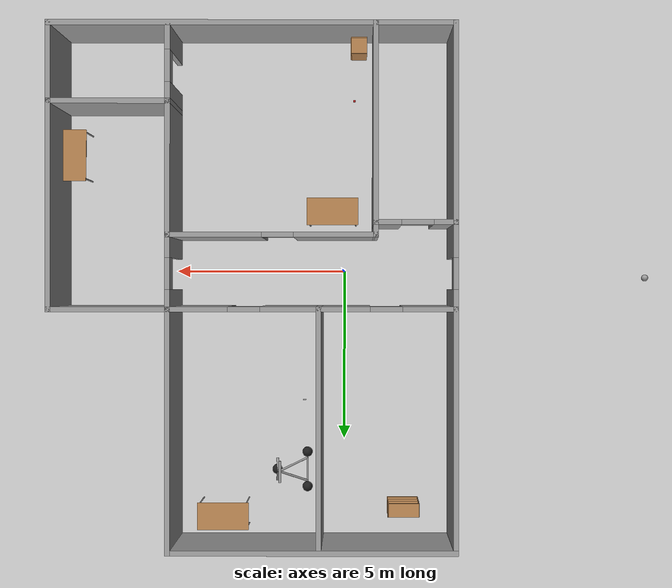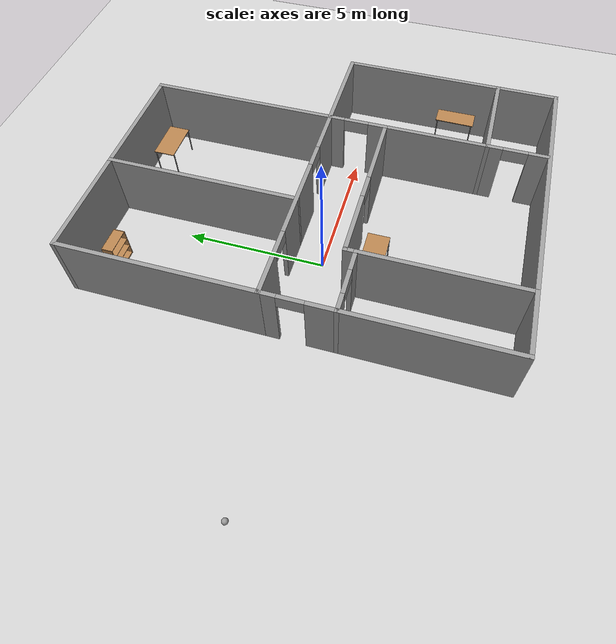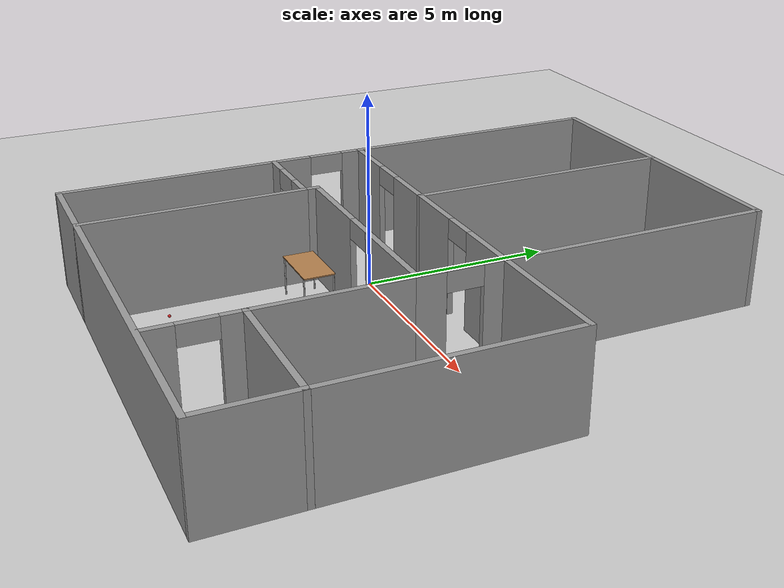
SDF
<sdf version="1.6">
 <world name="default">
  <plugin name="welcome_message" filename="libwelcome_message.so"/>
  <light name="sun" type="directional">
   <pose>0 0 10 0 -0 0</pose>
   <diffuse>0.8 0.8 0.8 1</diffuse>
   <specular>0.2 0.2 0.2 1</specular>
   <attenuation>
    <range>1000</range>
    <constant>0.9</constant>
    <linear>0.01</linear>
    <quadratic>0.001</quadratic>
   </attenuation>
   <direction>-0.5 0.1 -0.9</direction>
   <spot><inner_angle>0</inner_angle><outer_angle>0</outer_angle><falloff>0</falloff></spot>
  </light>
  <model name="ground_plane">
   <static>1</static>
   <link name="link">
    <collision name="collision">
     <geometry><plane><normal>0 0 1</normal><size>100 100</size></plane></geometry>
     <surface>
      <contact><collide_bitmask>65535</collide_bitmask></contact>
      <friction><ode><mu>100</mu><mu2>50</mu2></ode></friction>
     </surface>
    </collision>
    <visual name="visual">
     <cast_shadows>0</cast_shadows>
     <geometry><plane><normal>0 0 1</normal><size>100 100</size></plane></geometry>
     <material>
      <script><uri>file://media/materials/scripts/gazebo.material</uri><name>Gazebo/Grey</name></script>
     </material>
    </visual>
   </link>
  </model>
  <gravity>0 0 -9.8</gravity>
  <magnetic_field>6e-06 2.3e-05 -4.2e-05</magnetic_field>
  <atmosphere type="adiabatic"/>
  <physics name="default_physics" default="0" type="ode">
   <max_step_size>0.001</max_step_size>
   <real_time_factor>1</real_time_factor>
   <real_time_update_rate>1000</real_time_update_rate>
  </physics>
  <scene><ambient>0.4 0.4 0.4 1</ambient><background>0.7 0.7 0.7 1</background><shadows>1</shadows></scene>
  <spherical_coordinates>
   <surface_model>EARTH_WGS84</surface_model>
   <latitude_deg>0</latitude_deg>
   <longitude_deg>0</longitude_deg>
   <elevation>0</elevation>
   <heading_deg>0</heading_deg>
  </spherical_coordinates>
  <model name="model">
   <pose>2.57259 0.488978 0 0 -0 0</pose>
   <link name="Wall_14">
    <pose>-1.675 0.600142 0 0 -0 3.14159</pose>
    <visual name="Wall_14_Visual_0">
     <pose>-3.24372 0 1.25 0 -0 0</pose>
     <geometry><box><size>1.76255 0.15 2.5</size></box></geometry>
     <material>
      <script><uri>file://media/materials/scripts/gazebo.material</uri><name>Gazebo/Grey</name></script>
      <ambient>1 1 1 1</ambient>
     </material>
     <meta><layer>0</layer></meta>
    </visual>
    <collision name="Wall_14_Collision_0">
     <geometry><box><size>1.76255 0.15 2.5</size></box></geometry>
     <pose>-3.24372 0 1.25 0 -0 0</pose>
    </collision>
    <visual name="Wall_14_Visual_1">
     <pose>0.092741 0 1.25 0 -0 0</pose>
     <geometry><box><size>3.11038 0.15 2.5</size></box></geometry>
     <material>
      <script><uri>file://media/materials/scripts/gazebo.material</uri><name>Gazebo/Grey</name></script>
      <ambient>1 1 1 1</ambient>
     </material>
     <meta><layer>0</layer></meta>
    </visual>
    <collision name="Wall_14_Collision_1">
     <geometry><box><size>3.11038 0.15 2.5</size></box></geometry>
     <pose>0.092741 0 1.25 0 -0 0</pose>
    </collision>
    <visual name="Wall_14_Visual_2">
     <pose>3.33647 0 1.25 0 -0 0</pose>
     <geometry><box><size>1.57707 0.15 2.5</size></box></geometry>
     <material>
      <script><uri>file://media/materials/scripts/gazebo.material</uri><name>Gazebo/Grey</name></script>
      <ambient>1 1 1 1</ambient>
     </material>
     <meta><layer>0</layer></meta>
    </visual>
    <collision name="Wall_14_Collision_2">
     <geometry><box><size>1.57707 0.15 2.5</size></box></geometry>
     <pose>3.33647 0 1.25 0 -0 0</pose>
    </collision>
    <visual name="Wall_14_Visual_3">
     <pose>-1.91245 0 2.25 0 -0 0</pose>
     <geometry><box><size>0.9 0.15 0.5</size></box></geometry>
     <material>
      <script><uri>file://media/materials/scripts/gazebo.material</uri><name>Gazebo/Grey</name></script>
      <ambient>1 1 1 1</ambient>
     </material>
     <meta><layer>0</layer></meta>
    </visual>
    <collision name="Wall_14_Collision_3">
     <geometry><box><size>0.9 0.15 0.5</size></box></geometry>
     <pose>-1.91245 0 2.25 0 -0 0</pose>
    </collision>
    <visual name="Wall_14_Visual_4">
     <pose>2.09793 0 2.25 0 -0 0</pose>
     <geometry><box><size>0.9 0.15 0.5</size></box></geometry>
     <material>
      <script><uri>file://media/materials/scripts/gazebo.material</uri><name>Gazebo/Grey</name></script>
      <ambient>1 1 1 1</ambient>
     </material>
     <meta><layer>0</layer></meta>
    </visual>
    <collision name="Wall_14_Collision_4">
     <geometry><box><size>0.9 0.15 0.5</size></box></geometry>
     <pose>2.09793 0 2.25 0 -0 0</pose>
    </collision>
   </link>
   <link name="Wall_18">
    <pose>-4.6 -1.84986 0 0 -0 3.14159</pose>
    <visual name="Wall_18_Visual_0">
     <pose>-0.7988 0 1.25 0 -0 0</pose>
     <geometry><box><size>0.8024 0.15 2.5</size></box></geometry>
     <material>
      <script><uri>file://media/materials/scripts/gazebo.material</uri><name>Gazebo/Grey</name></script>
      <ambient>1 1 1 1</ambient>
     </material>
     <meta><layer>0</layer></meta>
    </visual>
    <collision name="Wall_18_Collision_0">
     <geometry><box><size>0.8024 0.15 2.5</size></box></geometry>
     <pose>-0.7988 0 1.25 0 -0 0</pose>
    </collision>
    <visual name="Wall_18_Visual_1">
     <pose>0.8512 0 1.25 0 -0 0</pose>
     <geometry><box><size>0.6976 0.15 2.5</size></box></geometry>
     <material>
      <script><uri>file://media/materials/scripts/gazebo.material</uri><name>Gazebo/Grey</name></script>
      <ambient>1 1 1 1</ambient>
     </material>
     <meta><layer>0</layer></meta>
    </visual>
    <collision name="Wall_18_Collision_1">
     <geometry><box><size>0.6976 0.15 2.5</size></box></geometry>
     <pose>0.8512 0 1.25 0 -0 0</pose>
    </collision>
    <visual name="Wall_18_Visual_2">
     <pose>0.0524 0 2.25 0 -0 0</pose>
     <geometry><box><size>0.9 0.15 0.5</size></box></geometry>
     <material>
      <script><uri>file://media/materials/scripts/gazebo.material</uri><name>Gazebo/Grey</name></script>
      <ambient>1 1 1 1</ambient>
     </material>
     <meta><layer>0</layer></meta>
    </visual>
    <collision name="Wall_18_Collision_2">
     <geometry><box><size>0.9 0.15 0.5</size></box></geometry>
     <pose>0.0524 0 2.25 0 -0 0</pose>
    </collision>
   </link>
   <link name="Wall_19">
    <pose>-5.725 -0.624858 0 0 -0 1.5708</pose>
    <visual name="Wall_19_Visual_0">
     <pose>-0.763447 0 1.25 0 -0 0</pose>
     <geometry><box><size>1.07361 0.15 2.5</size></box></geometry>
     <material>
      <script><uri>file://media/materials/scripts/gazebo.material</uri><name>Gazebo/Grey</name></script>
      <ambient>1 1 1 1</ambient>
     </material>
     <meta><layer>0</layer></meta>
    </visual>
    <collision name="Wall_19_Collision_0">
     <geometry><box><size>1.07361 0.15 2.5</size></box></geometry>
     <pose>-0.763447 0 1.25 0 -0 0</pose>
    </collision>
    <visual name="Wall_19_Visual_1">
     <pose>0.986808 0 1.25 0 -0 0</pose>
     <geometry><box><size>0.626895 0.15 2.5</size></box></geometry>
     <material>
      <script><uri>file://media/materials/scripts/gazebo.material</uri><name>Gazebo/Grey</name></script>
      <ambient>1 1 1 1</ambient>
     </material>
     <meta><layer>0</layer></meta>
    </visual>
    <collision name="Wall_19_Collision_1">
     <geometry><box><size>0.626895 0.15 2.5</size></box></geometry>
     <pose>0.986808 0 1.25 0 -0 0</pose>
    </collision>
    <visual name="Wall_19_Visual_2">
     <pose>0.22336 0 2.25 0 -0 0</pose>
     <geometry><box><size>0.9 0.15 0.5</size></box></geometry>
     <material>
      <script><uri>file://media/materials/scripts/gazebo.material</uri><name>Gazebo/Grey</name></script>
      <ambient>1 1 1 1</ambient>
     </material>
     <meta><layer>0</layer></meta>
    </visual>
    <collision name="Wall_19_Collision_2">
     <geometry><box><size>0.9 0.15 0.5</size></box></geometry>
     <pose>0.22336 0 2.25 0 -0 0</pose>
    </collision>
   </link>
   <link name="Wall_21">
    <collision name="Wall_21_Collision">
     <geometry><box><size>7 0.15 2.5</size></box></geometry>
     <pose>0 0 1.25 0 -0 0</pose>
    </collision>
    <visual name="Wall_21_Visual">
     <pose>0 0 1.25 0 -0 0</pose>
     <geometry><box><size>7 0.15 2.5</size></box></geometry>
     <material>
      <script><uri>file://media/materials/scripts/gazebo.material</uri><name>Gazebo/Grey</name></script>
      <ambient>1 1 1 1</ambient>
     </material>
     <meta><layer>0</layer></meta>
    </visual>
    <pose>2.375 4.02514 0 0 -0 1.5708</pose>
   </link>
   <link name="Wall_23">
    <collision name="Wall_23_Collision">
     <geometry><box><size>8.25 0.15 2.5</size></box></geometry>
     <pose>0 0 1.25 0 -0 0</pose>
    </collision>
    <visual name="Wall_23_Visual">
     <pose>0 0 1.25 0 -0 0</pose>
     <geometry><box><size>8.25 0.15 2.5</size></box></geometry>
     <material>
      <script><uri>file://media/materials/scripts/gazebo.material</uri><name>Gazebo/Grey</name></script>
      <ambient>1 1 1 1</ambient>
     </material>
     <meta><layer>0</layer></meta>
    </visual>
    <pose>-1.675 7.45014 0 0 -0 3.14159</pose>
   </link>
   <link name="Wall_24">
    <collision name="Wall_24_Collision">
     <geometry><box><size>7 0.15 2.5</size></box></geometry>
     <pose>0 0 1.25 0 -0 0</pose>
    </collision>
    <visual name="Wall_24_Visual">
     <pose>0 0 1.25 0 -0 0</pose>
     <geometry><box><size>7 0.15 2.5</size></box></geometry>
     <material>
      <script><uri>file://media/materials/scripts/gazebo.material</uri><name>Gazebo/Grey</name></script>
      <ambient>1 1 1 1</ambient>
     </material>
     <meta><layer>0</layer></meta>
    </visual>
    <pose>-5.725 4.02514 0 0 -0 -1.5708</pose>
   </link>
   <link name="Wall_28">
    <collision name="Wall_28_Collision">
     <geometry><box><size>7 0.15 2.5</size></box></geometry>
     <pose>0 0 1.25 0 -0 0</pose>
    </collision>
    <visual name="Wall_28_Visual">
     <pose>0 0 1.25 0 -0 0</pose>
     <geometry><box><size>7 0.15 2.5</size></box></geometry>
     <material>
      <script><uri>file://media/materials/scripts/gazebo.material</uri><name>Gazebo/Grey</name></script>
      <ambient>1 1 1 1</ambient>
     </material>
     <meta><layer>0</layer></meta>
    </visual>
    <pose>-1.86716 4.02489 0 0 -0 -1.5708</pose>
   </link>
   <link name="Wall_30">
    <collision name="Wall_30_Collision">
     <geometry><box><size>3.5 0.15 2.5</size></box></geometry>
     <pose>0 0 1.25 0 -0 0</pose>
    </collision>
    <visual name="Wall_30_Visual">
     <pose>0 0 1.25 0 -0 0</pose>
     <geometry><box><size>3.5 0.15 2.5</size></box></geometry>
     <material>
      <script><uri>file://media/materials/scripts/gazebo.material</uri><name>Gazebo/Grey</name></script>
      <ambient>1 1 1 1</ambient>
     </material>
     <meta><layer>0</layer></meta>
    </visual>
    <pose>4.05 0.600142 0 0 -0 0</pose>
   </link>
   <link name="Wall_31">
    <collision name="Wall_31_Collision">
     <geometry><box><size>6 0.15 2.5</size></box></geometry>
     <pose>0 0 1.25 0 -0 0</pose>
    </collision>
    <visual name="Wall_31_Visual">
     <pose>0 0 1.25 0 -0 0</pose>
     <geometry><box><size>6 0.15 2.5</size></box></geometry>
     <material>
      <script><uri>file://media/materials/scripts/gazebo.material</uri><name>Gazebo/Grey</name></script>
      <ambient>1 1 1 1</ambient>
     </material>
     <meta><layer>0</layer></meta>
    </visual>
    <pose>5.725 -2.32486 0 0 -0 -1.5708</pose>
   </link>
   <link name="Wall_32">
    <collision name="Wall_32_Collision">
     <geometry><box><size>3.5 0.15 2.5</size></box></geometry>
     <pose>0 0 1.25 0 -0 0</pose>
    </collision>
    <visual name="Wall_32_Visual">
     <pose>0 0 1.25 0 -0 0</pose>
     <geometry><box><size>3.5 0.15 2.5</size></box></geometry>
     <material>
      <script><uri>file://media/materials/scripts/gazebo.material</uri><name>Gazebo/Grey</name></script>
      <ambient>1 1 1 1</ambient>
     </material>
     <meta><layer>0</layer></meta>
    </visual>
    <pose>4.05 -5.24986 0 0 -0 3.14159</pose>
   </link>
   <link name="Wall_33">
    <collision name="Wall_33_Collision">
     <geometry><box><size>3.9 0.15 2.5</size></box></geometry>
     <pose>0 0 1.25 0 -0 0</pose>
    </collision>
    <visual name="Wall_33_Visual">
     <pose>0 0 1.25 0 -0 0</pose>
     <geometry><box><size>3.9 0.15 2.5</size></box></geometry>
     <material>
      <script><uri>file://media/materials/scripts/gazebo.material</uri><name>Gazebo/Grey</name></script>
      <ambient>1 1 1 1</ambient>
     </material>
     <meta><layer>0</layer></meta>
    </visual>
    <pose>2.375 -3.37486 0 0 -0 1.5708</pose>
   </link>
   <link name="Wall_38">
    <collision name="Wall_38_Collision">
     <geometry><box><size>5.75 0.15 2.5</size></box></geometry>
     <pose>0 0 1.25 0 -0 0</pose>
    </collision>
    <visual name="Wall_38_Visual">
     <pose>0 0 1.25 0 -0 0</pose>
     <geometry><box><size>5.75 0.15 2.5</size></box></geometry>
     <material>
      <script><uri>file://media/materials/scripts/gazebo.material</uri><name>Gazebo/Grey</name></script>
      <ambient>1 1 1 1</ambient>
     </material>
     <meta><layer>0</layer></meta>
    </visual>
    <pose>-3.475 -4.64986 0 0 -0 -1.5708</pose>
   </link>
   <link name="Wall_39">
    <collision name="Wall_39_Collision">
     <geometry><box><size>9.35 0.15 2.5</size></box></geometry>
     <pose>0 0 1.25 0 -0 0</pose>
    </collision>
    <visual name="Wall_39_Visual">
     <pose>0 0 1.25 0 -0 0</pose>
     <geometry><box><size>9.35 0.15 2.5</size></box></geometry>
     <material>
      <script><uri>file://media/materials/scripts/gazebo.material</uri><name>Gazebo/Grey</name></script>
      <ambient>1 1 1 1</ambient>
     </material>
     <meta><layer>0</layer></meta>
    </visual>
    <pose>1.125 -7.44986 0 0 -0 0</pose>
   </link>
   <link name="Wall_40">
    <collision name="Wall_40_Collision">
     <geometry><box><size>2.35057 0.15 2.5</size></box></geometry>
     <pose>0 0 1.25 0 -0 0</pose>
    </collision>
    <visual name="Wall_40_Visual">
     <pose>0 0 1.25 0 -0 0</pose>
     <geometry><box><size>2.35057 0.15 2.5</size></box></geometry>
     <material>
      <script><uri>file://media/materials/scripts/gazebo.material</uri><name>Gazebo/Grey</name></script>
      <ambient>1 1 1 1</ambient>
     </material>
     <meta><layer>0</layer></meta>
    </visual>
    <pose>5.725 -6.34986 0 0 -0 1.5708</pose>
   </link>
   <link name="Wall_42">
    <collision name="Wall_42_Collision">
     <geometry><box><size>5.75 0.15 2.5</size></box></geometry>
     <pose>0 0 1.25 0 -0 0</pose>
    </collision>
    <visual name="Wall_42_Visual">
     <pose>0 0 1.25 0 -0 0</pose>
     <geometry><box><size>5.75 0.15 2.5</size></box></geometry>
     <material>
      <script><uri>file://media/materials/scripts/gazebo.material</uri><name>Gazebo/Grey</name></script>
      <ambient>1 1 1 1</ambient>
     </material>
     <meta><layer>0</layer></meta>
    </visual>
    <pose>-5.725 -4.64986 0 0 -0 -1.5708</pose>
   </link>
   <link name="Wall_43">
    <collision name="Wall_43_Collision">
     <geometry><box><size>2.4 0.15 2.5</size></box></geometry>
     <pose>0 0 1.25 0 -0 0</pose>
    </collision>
    <visual name="Wall_43_Visual">
     <pose>0 0 1.25 0 -0 0</pose>
     <geometry><box><size>2.4 0.15 2.5</size></box></geometry>
     <material>
      <script><uri>file://media/materials/scripts/gazebo.material</uri><name>Gazebo/Grey</name></script>
      <ambient>1 1 1 1</ambient>
     </material>
     <meta><layer>0</layer></meta>
    </visual>
    <pose>-4.6 -7.44986 0 0 -0 0</pose>
   </link>
   <link name="Wall_45">
    <pose>2.375 -6.29986 0 0 -0 -1.5708</pose>
    <visual name="Wall_45_Visual_0">
     <pose>-0.816843 0 1.25 0 -0 0</pose>
     <geometry><box><size>0.616315 0.15 2.5</size></box></geometry>
     <material>
      <script><uri>file://media/materials/scripts/gazebo.material</uri><name>Gazebo/Grey</name></script>
      <ambient>1 1 1 1</ambient>
     </material>
     <meta><layer>0</layer></meta>
    </visual>
    <collision name="Wall_45_Collision_0">
     <geometry><box><size>0.616315 0.15 2.5</size></box></geometry>
     <pose>-0.816843 0 1.25 0 -0 0</pose>
    </collision>
    <visual name="Wall_45_Visual_1">
     <pose>0.758157 0 1.25 0 -0 0</pose>
     <geometry><box><size>0.733685 0.15 2.5</size></box></geometry>
     <material>
      <script><uri>file://media/materials/scripts/gazebo.material</uri><name>Gazebo/Grey</name></script>
      <ambient>1 1 1 1</ambient>
     </material>
     <meta><layer>0</layer></meta>
    </visual>
    <collision name="Wall_45_Collision_1">
     <geometry><box><size>0.733685 0.15 2.5</size></box></geometry>
     <pose>0.758157 0 1.25 0 -0 0</pose>
    </collision>
    <visual name="Wall_45_Visual_2">
     <pose>-0.058685 0 2.25 0 -0 0</pose>
     <geometry><box><size>0.9 0.15 0.5</size></box></geometry>
     <material>
      <script><uri>file://media/materials/scripts/gazebo.material</uri><name>Gazebo/Grey</name></script>
      <ambient>1 1 1 1</ambient>
     </material>
     <meta><layer>0</layer></meta>
    </visual>
    <collision name="Wall_45_Collision_2">
     <geometry><box><size>0.9 0.15 0.5</size></box></geometry>
     <pose>-0.058685 0 2.25 0 -0 0</pose>
    </collision>
   </link>
   <link name="Wall_5">
    <collision name="Wall_5_Collision">
     <geometry><box><size>0.5 0.15 2.5</size></box></geometry>
     <pose>0 0 1.25 0 -0 0</pose>
    </collision>
    <visual name="Wall_5_Visual">
     <pose>0 0 1.25 0 -0 0</pose>
     <geometry><box><size>0.5 0.15 2.5</size></box></geometry>
     <material>
      <script><uri>file://media/materials/scripts/gazebo.material</uri><name>Gazebo/Grey</name></script>
      <ambient>1 1 1 1</ambient>
     </material>
     <meta><layer>0</layer></meta>
    </visual>
    <pose>-3.475 -1.67486 0 0 -0 1.5708</pose>
   </link>
   <link name="Wall_6">
    <pose>-0.55 -1.49986 0 0 -0 0</pose>
    <visual name="Wall_6_Visual_0">
     <pose>-1.80619 0 1.25 0 -0 0</pose>
     <geometry><box><size>2.38762 0.15 2.5</size></box></geometry>
     <material>
      <script><uri>file://media/materials/scripts/gazebo.material</uri><name>Gazebo/Grey</name></script>
      <ambient>1 1 1 1</ambient>
     </material>
     <meta><layer>0</layer></meta>
    </visual>
    <collision name="Wall_6_Collision_0">
     <geometry><box><size>2.38762 0.15 2.5</size></box></geometry>
     <pose>-1.80619 0 1.25 0 -0 0</pose>
    </collision>
    <visual name="Wall_6_Visual_1">
     <pose>1.64381 0 1.25 0 -0 0</pose>
     <geometry><box><size>2.71238 0.15 2.5</size></box></geometry>
     <material>
      <script><uri>file://media/materials/scripts/gazebo.material</uri><name>Gazebo/Grey</name></script>
      <ambient>1 1 1 1</ambient>
     </material>
     <meta><layer>0</layer></meta>
    </visual>
    <collision name="Wall_6_Collision_1">
     <geometry><box><size>2.71238 0.15 2.5</size></box></geometry>
     <pose>1.64381 0 1.25 0 -0 0</pose>
    </collision>
    <visual name="Wall_6_Visual_2">
     <pose>-0.162379 0 2.25 0 -0 0</pose>
     <geometry><box><size>0.9 0.15 0.5</size></box></geometry>
     <material>
      <script><uri>file://media/materials/scripts/gazebo.material</uri><name>Gazebo/Grey</name></script>
      <ambient>1 1 1 1</ambient>
     </material>
     <meta><layer>0</layer></meta>
    </visual>
    <collision name="Wall_6_Collision_2">
     <geometry><box><size>0.9 0.15 0.5</size></box></geometry>
     <pose>-0.162379 0 2.25 0 -0 0</pose>
    </collision>
   </link>
   <link name="Wall_7">
    <pose>2.375 -0.449858 0 0 -0 1.5708</pose>
    <visual name="Wall_7_Visual_0">
     <pose>-0.76332 0 1.25 0 -0 0</pose>
     <geometry><box><size>0.72336 0.15 2.5</size></box></geometry>
     <material>
      <script><uri>file://media/materials/scripts/gazebo.material</uri><name>Gazebo/Grey</name></script>
      <ambient>1 1 1 1</ambient>
     </material>
     <meta><layer>0</layer></meta>
    </visual>
    <collision name="Wall_7_Collision_0">
     <geometry><box><size>0.72336 0.15 2.5</size></box></geometry>
     <pose>-0.76332 0 1.25 0 -0 0</pose>
    </collision>
    <visual name="Wall_7_Visual_1">
     <pose>0.81168 0 1.25 0 -0 0</pose>
     <geometry><box><size>0.62664 0.15 2.5</size></box></geometry>
     <material>
      <script><uri>file://media/materials/scripts/gazebo.material</uri><name>Gazebo/Grey</name></script>
      <ambient>1 1 1 1</ambient>
     </material>
     <meta><layer>0</layer></meta>
    </visual>
    <collision name="Wall_7_Collision_1">
     <geometry><box><size>0.62664 0.15 2.5</size></box></geometry>
     <pose>0.81168 0 1.25 0 -0 0</pose>
    </collision>
    <visual name="Wall_7_Visual_2">
     <pose>0.04836 0 2.25 0 -0 0</pose>
     <geometry><box><size>0.9 0.15 0.5</size></box></geometry>
     <material>
      <script><uri>file://media/materials/scripts/gazebo.material</uri><name>Gazebo/Grey</name></script>
      <ambient>1 1 1 1</ambient>
     </material>
     <meta><layer>0</layer></meta>
    </visual>
    <collision name="Wall_7_Collision_2">
     <geometry><box><size>0.9 0.15 0.5</size></box></geometry>
     <pose>0.04836 0 2.25 0 -0 0</pose>
    </collision>
   </link>
   <static>1</static>
  </model>
  <model name="table">
   <static>1</static>
   <link name="link">
    <collision name="surface">
     <pose>0 0 1 0 -0 0</pose>
     <geometry><box><size>1.5 0.8 0.03</size></box></geometry>
     <surface><friction><ode><mu>0.6</mu><mu2>0.6</mu2></ode></friction></surface>
    </collision>
    <visual name="visual1">
     <pose>0 0 1 0 -0 0</pose>
     <geometry><box><size>1.5 0.8 0.03</size></box></geometry>
     <material>
      <script><uri>file://media/materials/scripts/gazebo.material</uri><name>Gazebo/Wood</name></script>
     </material>
    </visual>
    <collision name="front_left_leg">
     <pose>0.68 0.38 0.5 0 -0 0</pose>
     <geometry><cylinder><radius>0.02</radius><length>1</length></cylinder></geometry>
    </collision>
    <visual name="front_left_leg">
     <pose>0.68 0.38 0.5 0 -0 0</pose>
     <geometry><cylinder><radius>0.02</radius><length>1</length></cylinder></geometry>
     <material>
      <script><uri>file://media/materials/scripts/gazebo.material</uri><name>Gazebo/Grey</name></script>
     </material>
    </visual>
    <collision name="front_right_leg">
     <pose>0.68 -0.38 0.5 0 -0 0</pose>
     <geometry><cylinder><radius>0.02</radius><length>1</length></cylinder></geometry>
    </collision>
    <visual name="front_right_leg">
     <pose>0.68 -0.38 0.5 0 -0 0</pose>
     <geometry><cylinder><radius>0.02</radius><length>1</length></cylinder></geometry>
     <material>
      <script><uri>file://media/materials/scripts/gazebo.material</uri><name>Gazebo/Grey</name></script>
     </material>
    </visual>
    <collision name="back_right_leg">
     <pose>-0.68 -0.38 0.5 0 -0 0</pose>
     <geometry><cylinder><radius>0.02</radius><length>1</length></cylinder></geometry>
    </collision>
    <visual name="back_right_leg">
     <pose>-0.68 -0.38 0.5 0 -0 0</pose>
     <geometry><cylinder><radius>0.02</radius><length>1</length></cylinder></geometry>
     <material>
      <script><uri>file://media/materials/scripts/gazebo.material</uri><name>Gazebo/Grey</name></script>
     </material>
    </visual>
    <collision name="back_left_leg">
     <pose>-0.68 0.38 0.5 0 -0 0</pose>
     <geometry><cylinder><radius>0.02</radius><length>1</length></cylinder></geometry>
    </collision>
    <visual name="back_left_leg">
     <pose>-0.68 0.38 0.5 0 -0 0</pose>
     <geometry><cylinder><radius>0.02</radius><length>1</length></cylinder></geometry>
     <material>
      <script><uri>file://media/materials/scripts/gazebo.material</uri><name>Gazebo/Grey</name></script>
     </material>
    </visual>
   </link>
   <pose>7.95092 -3.38951 0 0 -0 1.557</pose>
  </model>
  <model name="table_clone">
   <static>1</static>
   <link name="link">
    <collision name="surface">
     <pose>0 0 1 0 -0 0</pose>
     <geometry><box><size>1.5 0.8 0.03</size></box></geometry>
     <surface><friction><ode><mu>0.6</mu><mu2>0.6</mu2></ode></friction></surface>
    </collision>
    <visual name="visual1">
     <pose>0 0 1 0 -0 0</pose>
     <geometry><box><size>1.5 0.8 0.03</size></box></geometry>
     <material>
      <script><uri>file://media/materials/scripts/gazebo.material</uri><name>Gazebo/Wood</name></script>
     </material>
    </visual>
    <collision name="front_left_leg">
     <pose>0.68 0.38 0.5 0 -0 0</pose>
     <geometry><cylinder><radius>0.02</radius><length>1</length></cylinder></geometry>
    </collision>
    <visual name="front_left_leg">
     <pose>0.68 0.38 0.5 0 -0 0</pose>
     <geometry><cylinder><radius>0.02</radius><length>1</length></cylinder></geometry>
     <material>
      <script><uri>file://media/materials/scripts/gazebo.material</uri><name>Gazebo/Grey</name></script>
     </material>
    </visual>
    <collision name="front_right_leg">
     <pose>0.68 -0.38 0.5 0 -0 0</pose>
     <geometry><cylinder><radius>0.02</radius><length>1</length></cylinder></geometry>
    </collision>
    <visual name="front_right_leg">
     <pose>0.68 -0.38 0.5 0 -0 0</pose>
     <geometry><cylinder><radius>0.02</radius><length>1</length></cylinder></geometry>
     <material>
      <script><uri>file://media/materials/scripts/gazebo.material</uri><name>Gazebo/Grey</name></script>
     </material>
    </visual>
    <collision name="back_right_leg">
     <pose>-0.68 -0.38 0.5 0 -0 0</pose>
     <geometry><cylinder><radius>0.02</radius><length>1</length></cylinder></geometry>
    </collision>
    <visual name="back_right_leg">
     <pose>-0.68 -0.38 0.5 0 -0 0</pose>
     <geometry><cylinder><radius>0.02</radius><length>1</length></cylinder></geometry>
     <material>
      <script><uri>file://media/materials/scripts/gazebo.material</uri><name>Gazebo/Grey</name></script>
     </material>
    </visual>
    <collision name="back_left_leg">
     <pose>-0.68 0.38 0.5 0 -0 0</pose>
     <geometry><cylinder><radius>0.02</radius><length>1</length></cylinder></geometry>
    </collision>
    <visual name="back_left_leg">
     <pose>-0.68 0.38 0.5 0 -0 0</pose>
     <geometry><cylinder><radius>0.02</radius><length>1</length></cylinder></geometry>
     <material>
      <script><uri>file://media/materials/scripts/gazebo.material</uri><name>Gazebo/Grey</name></script>
     </material>
    </visual>
   </link>
   <pose>3.54449 7.17911 0 0 -0 0</pose>
  </model>
  <model name="my_ball">
   <link name="link_0">
    <inertial>
     <mass>1</mass>
     <inertia><ixx>0.1</ixx><ixy>0</ixy><ixz>0</ixz><iyy>0.1</iyy><iyz>0</iyz><izz>0.1</izz></inertia>
    </inertial>
    <visual name="visual">
     <geometry><sphere><radius>0.1</radius></sphere></geometry>
     <material>
      <lighting>1</lighting>
      <script><uri>file://media/materials/scripts/gazebo.material</uri><name>Gazebo/Grey</name></script>
      <shader type="pixel"><normal_map>__default__</normal_map></shader>
      <ambient>1 1 1 1</ambient>
      <diffuse>1 1 1 1</diffuse>
      <specular>1 1 1 1</specular>
      <emissive>1 1 1 1</emissive>
     </material>
    </visual>
    <collision name="collision">
     <geometry><sphere><radius>0.1</radius></sphere></geometry>
     <surface>
      <friction>
       <ode><mu>1</mu><mu2>1</mu2><fdir1>0 0 0</fdir1><slip1>0</slip1><slip2>0</slip2></ode>
       <torsional>
        <coefficient>1</coefficient>
        <patch_radius>0</patch_radius>
        <surface_radius>0</surface_radius>
        <use_patch_radius>1</use_patch_radius>
        <ode><slip>0</slip></ode>
       </torsional>
      </friction>
      <bounce><restitution_coefficient>0</restitution_coefficient><threshold>1e+06</threshold></bounce>
      <contact>
       <collide_without_contact>0</collide_without_contact>
       <collide_without_contact_bitmask>1</collide_without_contact_bitmask>
       <collide_bitmask>1</collide_bitmask>
       <ode>
        <soft_cfm>0</soft_cfm>
        <soft_erp>0.2</soft_erp>
        <kp>1e+13</kp>
        <kd>1</kd>
        <max_vel>0.01</max_vel>
        <min_depth>0</min_depth>
       </ode>
       <bullet>
        <split_impulse>1</split_impulse>
        <split_impulse_penetration_threshold>-0.01</split_impulse_penetration_threshold>
        <soft_cfm>0</soft_cfm>
        <soft_erp>0.2</soft_erp>
        <kp>1e+13</kp>
        <kd>1</kd>
       </bullet>
      </contact>
     </surface>
    </collision>
   </link>
   <static>0</static>
   <pose>-9.0111 0.189089 0.1 0 -0 0</pose>
  </model>
  <model name="bookshelf">
   <static>1</static>
   <link name="link">
    <inertial><mass>1</mass></inertial>
    <collision name="back">
     <pose>0 0.005 0.6 0 -0 0</pose>
     <geometry><box><size>0.9 0.01 1.2</size></box></geometry>
    </collision>
    <visual name="visual1">
     <pose>0 0.005 0.6 0 -0 0</pose>
     <geometry><box><size>0.9 0.01 1.2</size></box></geometry>
     <material>
      <script><uri>file://media/materials/scripts/gazebo.material</uri><name>Gazebo/Wood</name></script>
     </material>
    </visual>
    <collision name="left_side">
     <pose>0.45 -0.195 0.6 0 -0 0</pose>
     <geometry><box><size>0.02 0.4 1.2</size></box></geometry>
    </collision>
    <visual name="visual2">
     <pose>0.45 -0.195 0.6 0 -0 0</pose>
     <geometry><box><size>0.02 0.4 1.2</size></box></geometry>
     <material>
      <script><uri>file://media/materials/scripts/gazebo.material</uri><name>Gazebo/Wood</name></script>
     </material>
    </visual>
    <collision name="right_side">
     <pose>-0.45 -0.195 0.6 0 -0 0</pose>
     <geometry><box><size>0.02 0.4 1.2</size></box></geometry>
    </collision>
    <visual name="visual3">
     <pose>-0.45 -0.195 0.6 0 -0 0</pose>
     <geometry><box><size>0.02 0.4 1.2</size></box></geometry>
     <material>
      <script><uri>file://media/materials/scripts/gazebo.material</uri><name>Gazebo/Wood</name></script>
     </material>
    </visual>
    <collision name="bottom">
     <pose>0 -0.195 0.03 0 -0 0</pose>
     <geometry><box><size>0.88 0.4 0.06</size></box></geometry>
    </collision>
    <visual name="visual4">
     <pose>0 -0.195 0.03 0 -0 0</pose>
     <geometry><box><size>0.88 0.4 0.06</size></box></geometry>
     <material>
      <script><uri>file://media/materials/scripts/gazebo.material</uri><name>Gazebo/Wood</name></script>
     </material>
    </visual>
    <collision name="top">
     <pose>0 -0.195 1.19 0 -0 0</pose>
     <geometry><box><size>0.88 0.4 0.02</size></box></geometry>
    </collision>
    <visual name="visual5">
     <pose>0 -0.195 1.19 0 -0 0</pose>
     <geometry><box><size>0.88 0.4 0.02</size></box></geometry>
     <material>
      <script><uri>file://media/materials/scripts/gazebo.material</uri><name>Gazebo/Wood</name></script>
     </material>
    </visual>
    <collision name="low_shelf">
     <pose>0 -0.195 0.43 0 -0 0</pose>
     <geometry><box><size>0.88 0.4 0.02</size></box></geometry>
    </collision>
    <visual name="visual6">
     <pose>0 -0.195 0.43 0 -0 0</pose>
     <geometry><box><size>0.88 0.4 0.02</size></box></geometry>
     <material>
      <script><uri>file://media/materials/scripts/gazebo.material</uri><name>Gazebo/Wood</name></script>
     </material>
    </visual>
    <collision name="high_shelf">
     <pose>0 -0.195 0.8 0 -0 0</pose>
     <geometry><box><size>0.88 0.4 0.02</size></box></geometry>
    </collision>
    <visual name="visual7">
     <pose>0 -0.195 0.8 0 -0 0</pose>
     <geometry><box><size>0.88 0.4 0.02</size></box></geometry>
     <material>
      <script><uri>file://media/materials/scripts/gazebo.material</uri><name>Gazebo/Wood</name></script>
     </material>
    </visual>
   </link>
   <pose>-1.73247 7.16434 0 0 -0 0</pose>
  </model>
  <model name="cabinet">
   <static>1</static>
   <link name="cabinet_bottom_plate">
    <inertial>
     <pose>0 0 -1 0 -0 0</pose>
     <inertia><ixx>2.05</ixx><ixy>0</ixy><ixz>0</ixz><iyy>2.05</iyy><iyz>0</iyz><izz>2.05</izz></inertia>
     <mass>25</mass>
    </inertial>
    <collision name="cabinet_bottom_plate_geom">
     <pose>0 0 0.01 0 -0 0</pose>
     <geometry><box><size>0.45 0.45 0.02</size></box></geometry>
    </collision>
    <visual name="cabinet_bottom_plate_geom_visual">
     <pose>0 0 0.01 0 -0 0</pose>
     <geometry><box><size>0.45 0.45 0.02</size></box></geometry>
     <material>
      <script><uri>file://media/materials/scripts/gazebo.material</uri><name>Gazebo/Wood</name></script>
     </material>
    </visual>
    <collision name="cabinet_bottom_plate_geom_cabinet_back_plate">
     <pose>0.235 0 0.51 0 -0 0</pose>
     <geometry><box><size>0.02 0.45 1.02</size></box></geometry>
    </collision>
    <visual name="cabinet_bottom_plate_geom_cabinet_back_plate_visual">
     <pose>0.235 0 0.51 0 -0 0</pose>
     <geometry><box><size>0.02 0.45 1.02</size></box></geometry>
     <material>
      <script><uri>file://media/materials/scripts/gazebo.material</uri><name>Gazebo/Wood</name></script>
     </material>
    </visual>
    <collision name="cabinet_bottom_plate_geom_cabinet_left_plate">
     <pose>0 0.235 0.51 0 -0 0</pose>
     <geometry><box><size>0.45 0.02 1.02</size></box></geometry>
    </collision>
    <visual name="cabinet_bottom_plate_geom_cabinet_left_plate_visual">
     <pose>0 0.235 0.51 0 -0 0</pose>
     <geometry><box><size>0.45 0.02 1.02</size></box></geometry>
     <material>
      <script><uri>file://media/materials/scripts/gazebo.material</uri><name>Gazebo/Wood</name></script>
     </material>
    </visual>
    <collision name="cabinet_bottom_plate_geom_cabinet_middle_plate">
     <pose>0 0 0.51 0 -0 0</pose>
     <geometry><box><size>0.45 0.45 0.02</size></box></geometry>
    </collision>
    <visual name="cabinet_bottom_plate_geom_cabinet_middle_plate_visual">
     <pose>0 0 0.51 0 -0 0</pose>
     <geometry><box><size>0.45 0.45 0.02</size></box></geometry>
     <material>
      <script><uri>file://media/materials/scripts/gazebo.material</uri><name>Gazebo/Wood</name></script>
     </material>
    </visual>
    <collision name="cabinet_bottom_plate_geom_cabinet_right_plate">
     <pose>0 -0.235 0.51 0 -0 0</pose>
     <geometry><box><size>0.45 0.02 1.02</size></box></geometry>
    </collision>
    <visual name="cabinet_bottom_plate_geom_cabinet_right_plate_visual">
     <pose>0 -0.235 0.51 0 -0 0</pose>
     <geometry><box><size>0.45 0.02 1.02</size></box></geometry>
     <material>
      <script><uri>file://media/materials/scripts/gazebo.material</uri><name>Gazebo/Wood</name></script>
     </material>
    </visual>
    <collision name="cabinet_bottom_plate_geom_cabinet_top_plate">
     <pose>0 0 1.01 0 -0 0</pose>
     <geometry><box><size>0.45 0.45 0.02</size></box></geometry>
    </collision>
    <visual name="cabinet_bottom_plate_geom_cabinet_top_plate_visual">
     <pose>0 0 1.01 0 -0 0</pose>
     <geometry><box><size>0.45 0.45 0.02</size></box></geometry>
     <material>
      <script><uri>file://media/materials/scripts/gazebo.material</uri><name>Gazebo/Wood</name></script>
     </material>
    </visual>
   </link>
   <pose>-0.439118 -6.60562 0 0 -0 0</pose>
  </model>
  <model name="trisphere_cycle">
   <link name="frame">
    <pose>-0.408559 0 0.385023 0 -0.522021 0</pose>
    <inertial>
     <mass>10</mass>
     <inertia><ixx>0.228</ixx><iyy>0.743521</iyy><izz>0.965521</izz><ixy>0</ixy><ixz>0</ixz><iyz>0</iyz></inertia>
    </inertial>
    <collision name="axle_collision">
     <pose>-0.471335 0 0 1.5708 -0 0</pose>
     <geometry><cylinder><length>1.03923</length><radius>0.03</radius></cylinder></geometry>
    </collision>
    <visual name="axle_visual">
     <pose>-0.471335 0 0 1.5708 -0 0</pose>
     <geometry><cylinder><length>1.03923</length><radius>0.03</radius></cylinder></geometry>
     <material>
      <script><uri>file://media/materials/scripts/gazebo.material</uri><name>Gazebo/Grey</name></script>
     </material>
    </visual>
    <collision name="frame_left_collision">
     <pose>0 0.171552 0 -2.79253 1.57079 3.14159</pose>
     <geometry><cylinder><length>1.00317</length><radius>0.03</radius></cylinder></geometry>
    </collision>
    <visual name="frame_left_visual">
     <pose>0 0.171552 0 -2.79253 1.57079 3.14159</pose>
     <geometry><cylinder><length>1.00317</length><radius>0.03</radius></cylinder></geometry>
     <material>
      <script><uri>file://media/materials/scripts/gazebo.material</uri><name>Gazebo/Grey</name></script>
     </material>
    </visual>
    <collision name="frame_right_collision">
     <pose>0 -0.171552 0 2.79253 1.57079 -3.14159</pose>
     <geometry><cylinder><length>1.00317</length><radius>0.03</radius></cylinder></geometry>
    </collision>
    <visual name="frame_right_visual">
     <pose>0 -0.171552 0 2.79253 1.57079 -3.14159</pose>
     <geometry><cylinder><length>1.00317</length><radius>0.03</radius></cylinder></geometry>
     <material>
      <script><uri>file://media/materials/scripts/gazebo.material</uri><name>Gazebo/Grey</name></script>
     </material>
    </visual>
   </link>
   <link name="fork">
    <pose>0.041441 0 0.385023 0 -0.174533 0</pose>
    <inertial>
     <mass>3</mass>
     <inertia>
      <ixx>0.158203</ixx>
      <iyy>0.0583594</iyy>
      <izz>0.102656</izz>
      <ixy>0</ixy>
      <ixz>0</ixz>
      <iyz>0</iyz>
     </inertia>
    </inertial>
    <collision name="handlebars_collision">
     <pose>0 0 0.397748 1.5708 -0 0</pose>
     <geometry><cylinder><length>0.636396</length><radius>0.0375</radius></cylinder></geometry>
    </collision>
    <visual name="handlebars_visual">
     <pose>0 0 0.397748 1.5708 -0 0</pose>
     <geometry><cylinder><length>0.636396</length><radius>0.0375</radius></cylinder></geometry>
     <material>
      <script><uri>file://media/materials/scripts/gazebo.material</uri><name>Gazebo/Grey</name></script>
     </material>
    </visual>
    <collision name="headtube_collision">
     <pose>0 0 0.238649 0 -0 0</pose>
     <geometry><cylinder><length>0.318198</length><radius>0.0375</radius></cylinder></geometry>
    </collision>
    <visual name="headtube_visual">
     <pose>0 0 0.238649 0 -0 0</pose>
     <geometry><cylinder><length>0.318198</length><radius>0.0375</radius></cylinder></geometry>
     <material>
      <script><uri>file://media/materials/scripts/gazebo.material</uri><name>Gazebo/Grey</name></script>
     </material>
    </visual>
    <collision name="spindle_collision">
     <pose>0 0 -0.238649 1.5708 -0 0</pose>
     <geometry><cylinder><length>0.636396</length><radius>0.015</radius></cylinder></geometry>
    </collision>
    <visual name="spindle_visual">
     <pose>0 0 -0.238649 1.5708 -0 0</pose>
     <geometry><cylinder><length>0.636396</length><radius>0.015</radius></cylinder></geometry>
     <material>
      <script><uri>file://media/materials/scripts/gazebo.material</uri><name>Gazebo/Grey</name></script>
     </material>
    </visual>
    <collision name="fork_left_collision">
     <pose>0 0.159099 -0.07955 0.785398 -0 0</pose>
     <geometry><cylinder><length>0.45</length><radius>0.0375</radius></cylinder></geometry>
    </collision>
    <visual name="fork_left_visual">
     <pose>0 0.159099 -0.07955 0.785398 -0 0</pose>
     <geometry><cylinder><length>0.45</length><radius>0.0375</radius></cylinder></geometry>
     <material>
      <script><uri>file://media/materials/scripts/gazebo.material</uri><name>Gazebo/Grey</name></script>
     </material>
    </visual>
    <collision name="fork_right_collision">
     <pose>0 -0.159099 -0.07955 -0.785398 0 0</pose>
     <geometry><cylinder><length>0.45</length><radius>0.0375</radius></cylinder></geometry>
    </collision>
    <visual name="fork_right_visual">
     <pose>0 -0.159099 -0.07955 -0.785398 0 0</pose>
     <geometry><cylinder><length>0.45</length><radius>0.0375</radius></cylinder></geometry>
     <material>
      <script><uri>file://media/materials/scripts/gazebo.material</uri><name>Gazebo/Grey</name></script>
     </material>
    </visual>
   </link>
   <link name="wheel_front">
    <pose>0.082882 0 0.15 0 -0 0</pose>
    <inertial>
     <mass>0.5</mass>
     <inertia><ixx>0.0045</ixx><iyy>0.0045</iyy><izz>0.0045</izz><ixy>0</ixy><ixz>0</ixz><iyz>0</iyz></inertia>
    </inertial>
    <collision name="collision">
     <geometry><sphere><radius>0.15</radius></sphere></geometry>
     <surface><contact><ode><kp>1e+08</kp><kd>1</kd><min_depth>0.0005</min_depth></ode></contact></surface>
    </collision>
    <visual name="visual">
     <geometry><sphere><radius>0.15</radius></sphere></geometry>
     <material>
      <script><uri>file://media/materials/scripts/gazebo.material</uri><name>Gazebo/Black</name></script>
     </material>
    </visual>
   </link>
   <joint name="wheel_front_steer" type="revolute">
    <parent>frame</parent>
    <child>fork</child>
    <axis>
     <xyz>0 0 1</xyz>
     <limit><lower>-0.959931</lower><upper>0.959931</upper></limit>
     <use_parent_model_frame>0</use_parent_model_frame>
     <dynamics><spring_reference>0</spring_reference><spring_stiffness>0</spring_stiffness></dynamics>
    </axis>
   </joint>
   <joint name="wheel_front_spin" type="revolute">
    <parent>fork</parent>
    <child>wheel_front</child>
    <axis>
     <xyz>0 1 0</xyz>
     <use_parent_model_frame>0</use_parent_model_frame>
     <limit><lower>-1e+16</lower><upper>1e+16</upper></limit>
     <dynamics><spring_reference>0</spring_reference><spring_stiffness>0</spring_stiffness></dynamics>
    </axis>
   </joint>
   <link name="wheel_rear_left">
    <pose>-0.817118 0.519615 0.15 0 -0 0</pose>
    <inertial>
     <mass>0.5</mass>
     <inertia><ixx>0.0045</ixx><iyy>0.0045</iyy><izz>0.0045</izz><ixy>0</ixy><ixz>0</ixz><iyz>0</iyz></inertia>
    </inertial>
    <collision name="collision">
     <geometry><sphere><radius>0.15</radius></sphere></geometry>
     <surface><contact><ode><kp>1e+08</kp><kd>1</kd><min_depth>0.0005</min_depth></ode></contact></surface>
    </collision>
    <visual name="visual">
     <geometry><sphere><radius>0.15</radius></sphere></geometry>
     <material>
      <script><uri>file://media/materials/scripts/gazebo.material</uri><name>Gazebo/Black</name></script>
     </material>
    </visual>
   </link>
   <joint name="wheel_rear_left_spin" type="revolute">
    <parent>frame</parent>
    <child>wheel_rear_left</child>
    <axis>
     <xyz>0 1 0</xyz>
     <use_parent_model_frame>0</use_parent_model_frame>
     <limit><lower>-1e+16</lower><upper>1e+16</upper></limit>
     <dynamics><spring_reference>0</spring_reference><spring_stiffness>0</spring_stiffness></dynamics>
    </axis>
   </joint>
   <link name="wheel_rear_right">
    <pose>-0.817118 -0.519615 0.15 0 -0 0</pose>
    <inertial>
     <mass>0.5</mass>
     <inertia><ixx>0.0045</ixx><iyy>0.0045</iyy><izz>0.0045</izz><ixy>0</ixy><ixz>0</ixz><iyz>0</iyz></inertia>
    </inertial>
    <collision name="collision">
     <geometry><sphere><radius>0.15</radius></sphere></geometry>
     <surface><contact><ode><kp>1e+08</kp><kd>1</kd><min_depth>0.0005</min_depth></ode></contact></surface>
    </collision>
    <visual name="visual">
     <geometry><sphere><radius>0.15</radius></sphere></geometry>
     <material>
      <script><uri>file://media/materials/scripts/gazebo.material</uri><name>Gazebo/Black</name></script>
     </material>
    </visual>
   </link>
   <joint name="wheel_rear_right_spin" type="revolute">
    <parent>frame</parent>
    <child>wheel_rear_right</child>
    <axis>
     <xyz>0 1 0</xyz>
     <use_parent_model_frame>0</use_parent_model_frame>
     <limit><lower>-1e+16</lower><upper>1e+16</upper></limit>
     <dynamics><spring_reference>0</spring_reference><spring_stiffness>0</spring_stiffness></dynamics>
    </axis>
   </joint>
   <pose>1.92259 5.91547 -0.000501 0 1e-06 -0.000995</pose>
  </model>
  <model name="table_0">
   <static>1</static>
   <link name="link">
    <collision name="surface">
     <pose>0 0 1 0 -0 0</pose>
     <geometry><box><size>1.5 0.8 0.03</size></box></geometry>
     <surface><friction><ode><mu>0.6</mu><mu2>0.6</mu2></ode></friction></surface>
    </collision>
    <visual name="visual1">
     <pose>0 0 1 0 -0 0</pose>
     <geometry><box><size>1.5 0.8 0.03</size></box></geometry>
     <material>
      <script><uri>file://media/materials/scripts/gazebo.material</uri><name>Gazebo/Wood</name></script>
     </material>
    </visual>
    <collision name="front_left_leg">
     <pose>0.68 0.38 0.5 0 -0 0</pose>
     <geometry><cylinder><radius>0.02</radius><length>1</length></cylinder></geometry>
    </collision>
    <visual name="front_left_leg">
     <pose>0.68 0.38 0.5 0 -0 0</pose>
     <geometry><cylinder><radius>0.02</radius><length>1</length></cylinder></geometry>
     <material>
      <script><uri>file://media/materials/scripts/gazebo.material</uri><name>Gazebo/Grey</name></script>
     </material>
    </visual>
    <collision name="front_right_leg">
     <pose>0.68 -0.38 0.5 0 -0 0</pose>
     <geometry><cylinder><radius>0.02</radius><length>1</length></cylinder></geometry>
    </collision>
    <visual name="front_right_leg">
     <pose>0.68 -0.38 0.5 0 -0 0</pose>
     <geometry><cylinder><radius>0.02</radius><length>1</length></cylinder></geometry>
     <material>
      <script><uri>file://media/materials/scripts/gazebo.material</uri><name>Gazebo/Grey</name></script>
     </material>
    </visual>
    <collision name="back_right_leg">
     <pose>-0.68 -0.38 0.5 0 -0 0</pose>
     <geometry><cylinder><radius>0.02</radius><length>1</length></cylinder></geometry>
    </collision>
    <visual name="back_right_leg">
     <pose>-0.68 -0.38 0.5 0 -0 0</pose>
     <geometry><cylinder><radius>0.02</radius><length>1</length></cylinder></geometry>
     <material>
      <script><uri>file://media/materials/scripts/gazebo.material</uri><name>Gazebo/Grey</name></script>
     </material>
    </visual>
    <collision name="back_left_leg">
     <pose>-0.68 0.38 0.5 0 -0 0</pose>
     <geometry><cylinder><radius>0.02</radius><length>1</length></cylinder></geometry>
    </collision>
    <visual name="back_left_leg">
     <pose>-0.68 0.38 0.5 0 -0 0</pose>
     <geometry><cylinder><radius>0.02</radius><length>1</length></cylinder></geometry>
     <material>
      <script><uri>file://media/materials/scripts/gazebo.material</uri><name>Gazebo/Grey</name></script>
     </material>
    </visual>
   </link>
   <pose>0.338268 -1.7553 0 0 -0 0</pose>
  </model>
  <model name="stone_10_2_5_1cm">
   <link name="link">
    <pose>0 0 0.005 0 -0 0</pose>
    <inertial>
     <mass>0.0628</mass>
     <inertia>
      <ixx>3.79417e-06</ixx>
      <ixy>0</ixy>
      <ixz>0</ixz>
      <iyy>5.28567e-05</iyy>
      <iyz>0</iyz>
      <izz>5.56042e-05</izz>
     </inertia>
    </inertial>
    <collision name="collision">
     <geometry><box><size>0.1 0.025 0.01</size></box></geometry>
     <surface>
      <contact>
       <poissons_ratio>0.15</poissons_ratio>
       <elastic_modulus>8e+10</elastic_modulus>
       <ode><kp>100000</kp><kd>100</kd><max_vel>100</max_vel><min_depth>0.001</min_depth></ode>
      </contact>
      <friction>
       <torsional>
        <coefficient>1</coefficient>
        <use_patch_radius>0</use_patch_radius>
        <surface_radius>0.01</surface_radius>
       </torsional>
      </friction>
     </surface>
    </collision>
    <visual name="visual">
     <geometry><box><size>0.1 0.025 0.01</size></box></geometry>
     <material>
      <script><uri>file://media/materials/scripts/gazebo.material</uri><name>Gazebo/Grey</name></script>
     </material>
    </visual>
   </link>
   <pose>1.19578 3.8461 -0.001002 0 -0 0</pose>
  </model>
  <model name="wooden_peg_board">
   <link name="wooden_board::base">
    <pose>0 0 0.00523 0 -0 0</pose>
    <inertial>
     <mass>0.2765</mass>
     <inertia>
      <ixx>0.0025148</ixx>
      <ixy>0</ixy>
      <ixz>0</ixz>
      <iyy>0.00024037</iyy>
      <iyz>0</iyz>
      <izz>0.00275013</izz>
     </inertia>
    </inertial>
    <collision name="collision">
     <geometry><box><size>0.1016 0.3302 0.01046</size></box></geometry>
     <surface>
      <contact>
       <poissons_ratio>0.347</poissons_ratio>
       <elastic_modulus>8.8e+09</elastic_modulus>
       <ode><kp>100000</kp><kd>100</kd><max_vel>100</max_vel><min_depth>0.001</min_depth></ode>
      </contact>
      <friction>
       <torsional>
        <coefficient>1</coefficient>
        <use_patch_radius>0</use_patch_radius>
        <surface_radius>0.01</surface_radius>
       </torsional>
      </friction>
     </surface>
    </collision>
    <visual name="visual">
     <geometry><box><size>0.1016 0.3302 0.01046</size></box></geometry>
     <material>
      <script><uri>file://media/materials/scripts/gazebo.material</uri><name>Gazebo/Wood</name></script>
     </material>
    </visual>
    <visual name="tee_nut_1">
     <pose>0 -0.116 0 0 -0 0</pose>
     <geometry><cylinder><radius>0.00635</radius><length>0.0105646</length></cylinder></geometry>
     <material>
      <script><uri>file://media/materials/scripts/gazebo.material</uri><name>Gazebo/Grey</name></script>
     </material>
    </visual>
    <visual name="tee_nut_2">
     <pose>0 -0.038 0 0 -0 0</pose>
     <geometry><cylinder><radius>0.00635</radius><length>0.0105646</length></cylinder></geometry>
     <material>
      <script><uri>file://media/materials/scripts/gazebo.material</uri><name>Gazebo/Grey</name></script>
     </material>
    </visual>
    <visual name="tee_nut_3">
     <pose>0 0.038 0 0 -0 0</pose>
     <geometry><cylinder><radius>0.00635</radius><length>0.0105646</length></cylinder></geometry>
     <material>
      <script><uri>file://media/materials/scripts/gazebo.material</uri><name>Gazebo/Grey</name></script>
     </material>
    </visual>
    <visual name="tee_nut_4">
     <pose>0 0.116 0 0 -0 0</pose>
     <geometry><cylinder><radius>0.00635</radius><length>0.0105646</length></cylinder></geometry>
     <material>
      <script><uri>file://media/materials/scripts/gazebo.material</uri><name>Gazebo/Grey</name></script>
     </material>
    </visual>
   </link>
   <link name="peg::link">
    <pose>0 0.116 0.04 0 -0 0</pose>
    <inertial>
     <mass>0.0175</mass>
     <inertia>
      <ixx>9.74923e-06</ixx>
      <ixy>0</ixy>
      <ixz>0</ixz>
      <iyy>9.74923e-06</iyy>
      <iyz>0</iyz>
      <izz>8.31797e-07</izz>
     </inertia>
    </inertial>
    <collision name="collision">
     <geometry><cylinder><radius>0.00975</radius><length>0.08</length></cylinder></geometry>
     <surface>
      <contact>
       <poissons_ratio>0.347</poissons_ratio>
       <elastic_modulus>8.8e+09</elastic_modulus>
       <ode><kp>100000</kp><kd>100</kd><max_vel>100</max_vel><min_depth>0.001</min_depth></ode>
      </contact>
      <friction>
       <torsional>
        <coefficient>1</coefficient>
        <use_patch_radius>0</use_patch_radius>
        <surface_radius>0.01</surface_radius>
       </torsional>
      </friction>
     </surface>
    </collision>
    <visual name="visual">
     <geometry><cylinder><radius>0.00975</radius><length>0.08</length></cylinder></geometry>
     <material>
      <script><uri>file://media/materials/scripts/gazebo.material</uri><name>Gazebo/Wood</name></script>
     </material>
    </visual>
   </link>
   <joint name="board_peg" type="revolute">
    <parent>wooden_board::base</parent>
    <child>peg::link</child>
    <axis>
     <xyz>0 0 1</xyz>
     <limit><upper>0</upper><lower>0</lower></limit>
     <use_parent_model_frame>0</use_parent_model_frame>
     <dynamics><spring_reference>0</spring_reference><spring_stiffness>0</spring_stiffness></dynamics>
    </axis>
   </joint>
   <pose>5.84516 -5.02164 -0.001004 1.3e-05 -1e-06 -1e-06</pose>
  </model>
  <model name="cricket_ball">
   <link name="link">
    <pose>0 0 0.0375 0 -0 0</pose>
    <inertial>
     <mass>0.1467</mass>
     <inertia>
      <ixx>8.25187e-05</ixx>
      <ixy>0</ixy>
      <ixz>0</ixz>
      <iyy>8.25187e-05</iyy>
      <iyz>0</iyz>
      <izz>8.25187e-05</izz>
     </inertia>
    </inertial>
    <collision name="collision">
     <geometry><sphere><radius>0.0375</radius></sphere></geometry>
     <surface>
      <contact>
       <poissons_ratio>0.347</poissons_ratio>
       <elastic_modulus>8.8e+09</elastic_modulus>
       <ode><kp>100000</kp><kd>100</kd><max_vel>100</max_vel><min_depth>0.001</min_depth></ode>
      </contact>
      <friction>
       <torsional>
        <coefficient>1</coefficient>
        <use_patch_radius>0</use_patch_radius>
        <surface_radius>0.01</surface_radius>
       </torsional>
      </friction>
     </surface>
    </collision>
    <visual name="visual">
     <geometry><sphere><radius>0.0375</radius></sphere></geometry>
     <material>
      <script><uri>file://media/materials/scripts/gazebo.material</uri><name>Gazebo/Red</name></script>
     </material>
    </visual>
    <velocity_decay><linear>0</linear><angular>0.005</angular></velocity_decay>
   </link>
   <pose>-0.296003 -5.12361 -0.001014 0 -0 0</pose>
  </model>
 </world>
</sdf>
